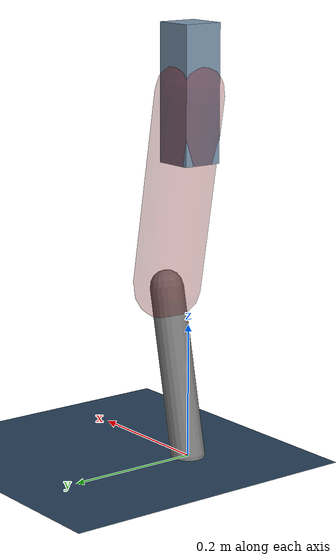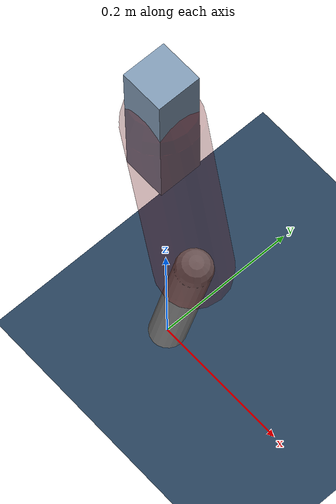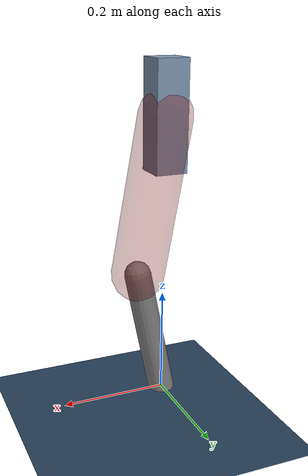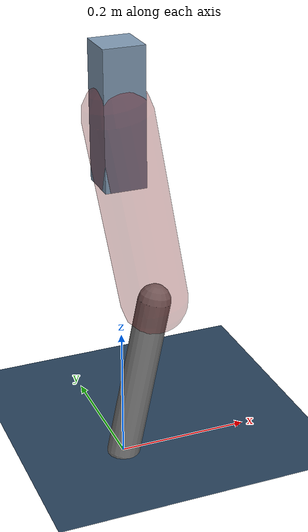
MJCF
<mujoco model="Hopper2D">
	<compiler inertiafromgeom="true" angle="radian" />
	<option timestep="0.001" integrator="implicit" cone="elliptic" solver="Newton" tolerance="1e-10" />

	<default>
		<geom contype="1" conaffinity="1" condim="3" friction="2 0.005 0.0001" solref="0.005 1" />
		<joint limited="true" damping="0.1" />
	</default>

	<asset>
		<texture name="skybox" type="skybox" builtin="gradient" rgb1=".4 .6 .8" rgb2="0 0 0" width="800" height="800" />
		<texture name="grid" type="2d" builtin="checker" rgb1=".1 .2 .3" rgb2=".2 .3 .4" width="300" height="300" mark="edge" markrgb=".2 .3 .4" />
		<material name="ground" texture="grid" texrepeat="1 1" texuniform="true" reflectance="0.1" />
		<material name="leg" rgba="0.5 0.6 0.7 1" />
	</asset>

	<worldbody>

		<geom name="floor" type="plane" size="5 5 0.25" material="ground" />

		<light directional="false" diffuse="0.8 0.8 0.8" specular="0.3 0.3 0.3" pos="0 0 2" dir="0 0 -1" />
		<light mode="targetbodycom" target="base" directional="false" diffuse="0.8 0.8 0.8" specular="0.3 0.3 0.3" pos="0 0 2" dir="0 0 -1" />

		<camera name="fixed" pos="0 -2 1" xyaxes="1 0 0 0 0 1" />
		<camera name="tracking" mode="trackcom" pos="0 -3 1" />

		<body name="root" pos="0 0 0.5389535544795394">
			<joint name="slide_x" type="slide" axis="1 0 0" range="-100 100" />
			<joint name="slide_z" type="slide" axis="0 0 1" range="0 10" />

			<body name="base" pos="0 0 0">
				<geom name="torso" type="box" size="0.03 0.03 0.1" mass="2.443" material="leg" />

				<body name="link1" pos="0 0 0" euler="0 1.394409263286892 0">
					<joint type="hinge" axis="0 -1 0" pos="0 0 0" name="hinge1" limited="true" range="-3.14 3.14" stiffness="0" damping="0.1" />
					<geom name="thigh" type="capsule" fromto="0 0 0 0.2962330275724716 0 0" size="0.05" rgba="0.5 0 0 0.3" mass="0.9785291744456733" />

					<body name="link2" pos="0.2962330275724716 0 0" euler="0 0.3835520106758393 0">
						<joint type="hinge" axis="0 -1 0" pos="0 0 0" name="hinge2" limited="true" range="-3.14 3.14" stiffness="0" damping="0.1" />
						<geom name="shank" type="capsule" fromto="0 0 0 0.2527205269070678 0 0" size="0.025" mass="0.4447764215256542" />

					</body>
				</body>
			</body>
		</body>
	</worldbody>

	<actuator>
		<motor name="torque1" joint="hinge1" ctrlrange="-86.98407585149141 86.98407585149141" ctrllimited="true" gear="1" />
		<motor name="torque2" joint="hinge2" ctrlrange="-98.01891241158094 98.01891241158094" ctrllimited="true" gear="1" />
	</actuator>
</mujoco>
